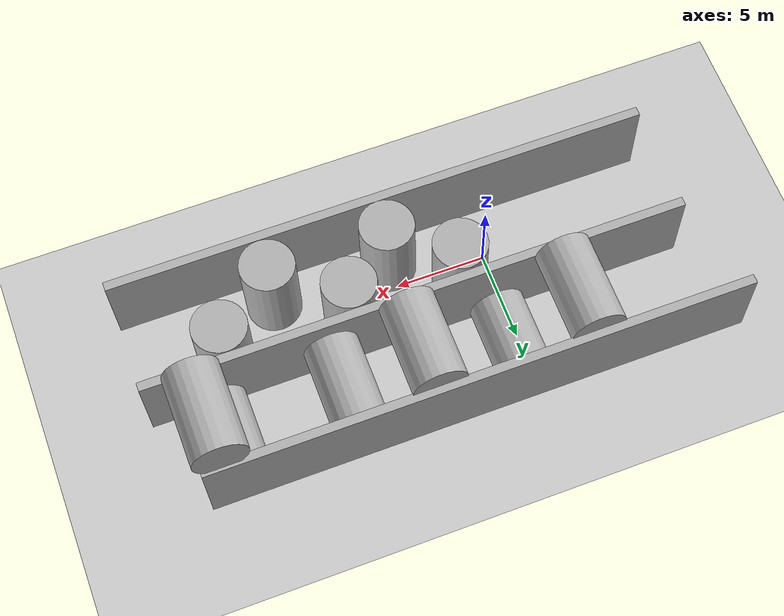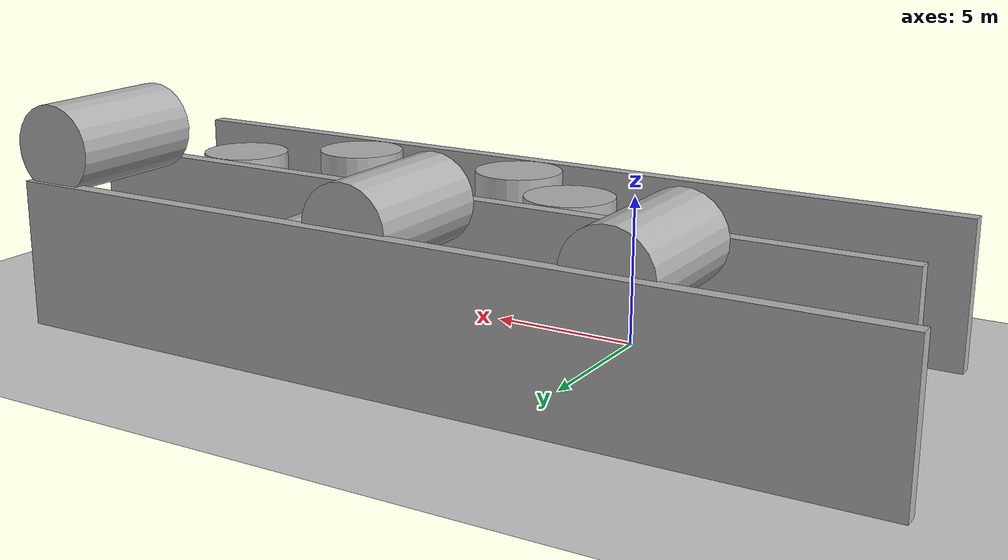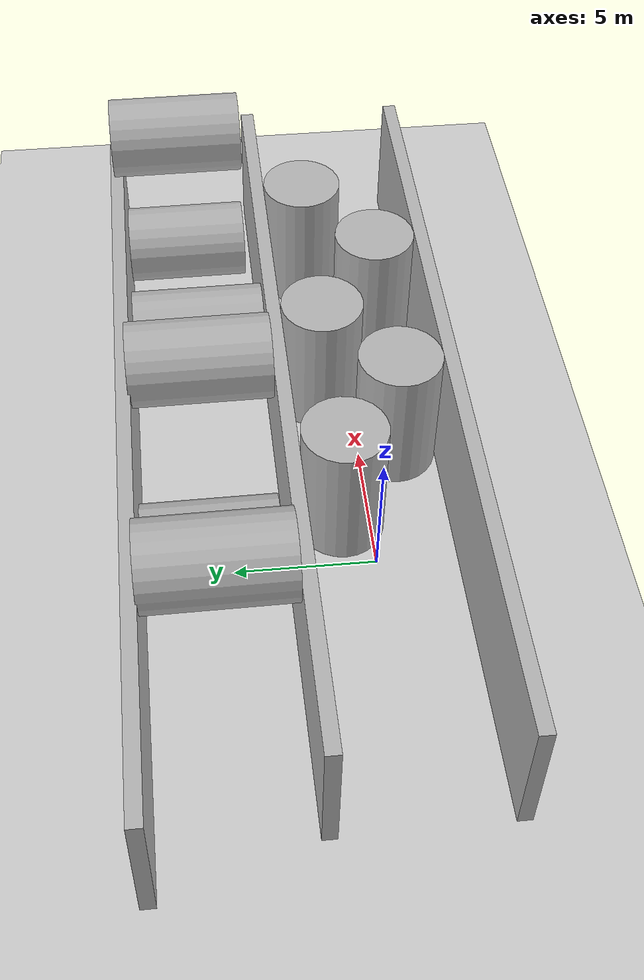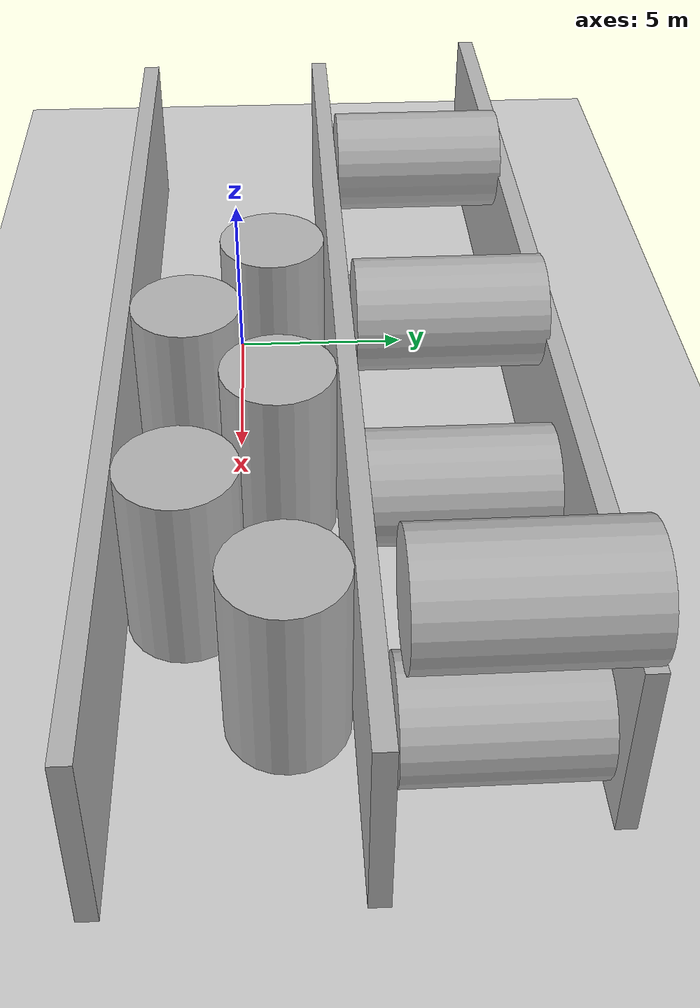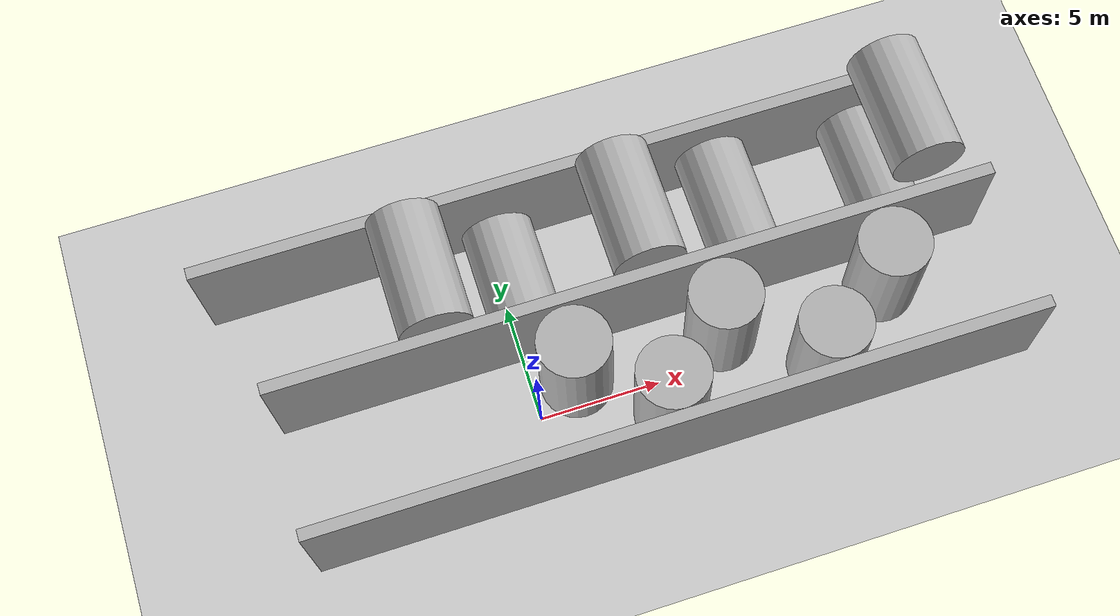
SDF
<sdf version='1.9'>
  <world name='demo'>
    <plugin name='ignition::gazebo::systems::Physics' filename='ignition-gazebo-physics-system'/>
    <plugin name='ignition::gazebo::systems::Sensors' filename='ignition-gazebo-sensors-system'>
      <render_engine>ogre2</render_engine>
    </plugin>
    <plugin name='ignition::gazebo::systems::SceneBroadcaster' filename='ignition-gazebo-scene-broadcaster-system'/>
    <plugin name='ignition::gazebo::systems::UserCommands' filename='ignition-gazebo-user-commands-system'/>
    <gravity>0 0 -9.8</gravity>
    <magnetic_field>6e-06 2.3e-05 -4.2e-05</magnetic_field>
    <atmosphere type='adiabatic'/>
    <physics type='ode'>
      <max_step_size>0.001</max_step_size>
      <real_time_factor>1</real_time_factor>
      <real_time_update_rate>1000</real_time_update_rate>
    </physics>
    <gui fullscreen='false'>
      <camera name='user_camera'>
        <track_visual>
          <name>crazyflie</name>
          <min_dist>0.02</min_dist>
          <max_dist>1</max_dist>
        </track_visual>
        <clip>
          <near>0.001</near>
          <far>1000</far>
        </clip>
      </camera>
    </gui>
    <scene>
      <ambient>0.4 0.4 0.4 1</ambient>
      <background>0.7 0.7 0.7 1</background>
      <shadows>true</shadows>
    </scene>
    <model name='ground_plane'>
      <static>true</static>
      <link name='link'>
        <collision name='collision'>
          <geometry>
            <plane>
              <normal>0 0 1</normal>
              <size>100 100</size>
            </plane>
          </geometry>
          <surface>
            <friction>
              <ode/>
            </friction>
            <bounce/>
            <contact/>
          </surface>
        </collision>
        <visual name='visual'>
          <geometry>
            <plane>
              <normal>0 0 1</normal>
              <size>100 100</size>
            </plane>
          </geometry>
          <material>
            <ambient>0.8 0.8 0.8 1</ambient>
            <diffuse>0.8 0.8 0.8 1</diffuse>
            <specular>0.8 0.8 0.8 1</specular>
          </material>
        </visual>
        <pose>0 0 0 0 -0 0</pose>
        <inertial>
          <pose>0 0 0 0 -0 0</pose>
          <mass>1</mass>
          <inertia>
            <ixx>1</ixx>
            <ixy>0</ixy>
            <ixz>0</ixz>
            <iyy>1</iyy>
            <iyz>0</iyz>
            <izz>1</izz>
          </inertia>
        </inertial>
        <enable_wind>false</enable_wind>
      </link>
      <pose>0 0 0 0 -0 0</pose>
      <self_collide>false</self_collide>
    </model>
    <model name='cylinder'>
      <pose>1.81527 1.03848 2.5 -0 0 0.000226</pose>
      <link name='cylinder_link'>
        <inertial>
          <inertia>
            <ixx>0.14580000000000001</ixx>
            <ixy>0</ixy>
            <ixz>0</ixz>
            <iyy>0.14580000000000001</iyy>
            <iyz>0</iyz>
            <izz>0.125</izz>
          </inertia>
          <mass>1</mass>
          <pose>0 0 0 0 -0 0</pose>
        </inertial>
        <collision name='cylinder_collision'>
          <geometry>
            <cylinder>
              <radius>1.5</radius>
              <length>5</length>
            </cylinder>
          </geometry>
          <surface>
            <friction>
              <ode/>
            </friction>
            <bounce/>
            <contact/>
          </surface>
        </collision>
        <visual name='cylinder_visual'>
          <geometry>
            <cylinder>
              <radius>1.5</radius>
              <length>5</length>
            </cylinder>
          </geometry>
          <material>
            <ambient>0.3 0.3 0.3 1</ambient>
            <diffuse>0.7 0.7 0.7 1</diffuse>
            <specular>1 1 1 1</specular>
          </material>
        </visual>
        <pose>0 0 0 0 -0 0</pose>
        <enable_wind>false</enable_wind>
      </link>
      <static>true</static>
      <self_collide>false</self_collide>
    </model>
    <model name='cylinder_0'>
      <pose>5.05656 -1.32108 2.5 0 0 2e-06</pose>
      <link name='cylinder_link'>
        <inertial>
          <inertia>
            <ixx>0.14580000000000001</ixx>
            <ixy>0</ixy>
            <ixz>0</ixz>
            <iyy>0.14580000000000001</iyy>
            <iyz>0</iyz>
            <izz>0.125</izz>
          </inertia>
          <mass>1</mass>
          <pose>0 0 0 0 -0 0</pose>
        </inertial>
        <collision name='cylinder_collision'>
          <geometry>
            <cylinder>
              <radius>1.5</radius>
              <length>5</length>
            </cylinder>
          </geometry>
          <surface>
            <friction>
              <ode/>
            </friction>
            <bounce/>
            <contact/>
          </surface>
        </collision>
        <visual name='cylinder_visual'>
          <geometry>
            <cylinder>
              <radius>1.5</radius>
              <length>5</length>
            </cylinder>
          </geometry>
          <material>
            <ambient>0.3 0.3 0.3 1</ambient>
            <diffuse>0.7 0.7 0.7 1</diffuse>
            <specular>1 1 1 1</specular>
          </material>
        </visual>
        <pose>0 0 0 0 -0 0</pose>
        <enable_wind>false</enable_wind>
      </link>
      <static>true</static>
      <self_collide>false</self_collide>
    </model>
    <model name='cylinder_1'>
      <pose>8.0159 1.10501 2.5 -0 -0 0.000515</pose>
      <link name='cylinder_link'>
        <inertial>
          <inertia>
            <ixx>0.14580000000000001</ixx>
            <ixy>0</ixy>
            <ixz>0</ixz>
            <iyy>0.14580000000000001</iyy>
            <iyz>0</iyz>
            <izz>0.125</izz>
          </inertia>
          <mass>1</mass>
          <pose>0 0 0 0 -0 0</pose>
        </inertial>
        <collision name='cylinder_collision'>
          <geometry>
            <cylinder>
              <radius>1.5</radius>
              <length>5</length>
            </cylinder>
          </geometry>
          <surface>
            <friction>
              <ode/>
            </friction>
            <bounce/>
            <contact/>
          </surface>
        </collision>
        <visual name='cylinder_visual'>
          <geometry>
            <cylinder>
              <radius>1.5</radius>
              <length>5</length>
            </cylinder>
          </geometry>
          <material>
            <ambient>0.3 0.3 0.3 1</ambient>
            <diffuse>0.7 0.7 0.7 1</diffuse>
            <specular>1 1 1 1</specular>
          </material>
        </visual>
        <pose>0 0 0 0 -0 0</pose>
        <enable_wind>false</enable_wind>
      </link>
      <static>true</static>
      <self_collide>false</self_collide>
    </model>
    <model name='cylinder_2'>
      <pose>11.6691 -1.31108 2.5 -0 -0 0</pose>
      <link name='cylinder_link'>
        <inertial>
          <inertia>
            <ixx>0.14580000000000001</ixx>
            <ixy>0</ixy>
            <ixz>0</ixz>
            <iyy>0.14580000000000001</iyy>
            <iyz>0</iyz>
            <izz>0.125</izz>
          </inertia>
          <mass>1</mass>
          <pose>0 0 0 0 -0 0</pose>
        </inertial>
        <collision name='cylinder_collision'>
          <geometry>
            <cylinder>
              <radius>1.5</radius>
              <length>5</length>
            </cylinder>
          </geometry>
          <surface>
            <friction>
              <ode/>
            </friction>
            <bounce/>
            <contact/>
          </surface>
        </collision>
        <visual name='cylinder_visual'>
          <geometry>
            <cylinder>
              <radius>1.5</radius>
              <length>5</length>
            </cylinder>
          </geometry>
          <material>
            <ambient>0.3 0.3 0.3 1</ambient>
            <diffuse>0.7 0.7 0.7 1</diffuse>
            <specular>1 1 1 1</specular>
          </material>
        </visual>
        <pose>0 0 0 0 -0 0</pose>
        <enable_wind>false</enable_wind>
      </link>
      <static>true</static>
      <self_collide>false</self_collide>
    </model>
    <model name='box'>
      <pose>4.89307 2.88151 2.5 0 -0 0.001471</pose>
      <link name='box_link'>
        <inertial>
          <inertia>
            <ixx>0.16666</ixx>
            <ixy>0</ixy>
            <ixz>0</ixz>
            <iyy>0.16666</iyy>
            <iyz>0</iyz>
            <izz>0.16666</izz>
          </inertia>
          <mass>1</mass>
          <pose>0 0 0 0 -0 0</pose>
        </inertial>
        <collision name='box_collision'>
          <geometry>
            <box>
              <size>30 0.5 5</size>
            </box>
          </geometry>
          <surface>
            <friction>
              <ode/>
            </friction>
            <bounce/>
            <contact/>
          </surface>
        </collision>
        <visual name='box_visual'>
          <geometry>
            <box>
              <size>30 0.5 5</size>
            </box>
          </geometry>
          <material>
            <ambient>0.3 0.3 0.3 1</ambient>
            <diffuse>0.7 0.7 0.7 1</diffuse>
            <specular>1 1 1 1</specular>
          </material>
        </visual>
        <pose>0 0 0 0 -0 0</pose>
        <enable_wind>false</enable_wind>
      </link>
      <static>true</static>
      <self_collide>false</self_collide>
    </model>
    <model name='box_0'>
      <pose>4.93074 -3.07107 2.5 0 -0 -5e-05</pose>
      <link name='box_link'>
        <inertial>
          <inertia>
            <ixx>0.16666</ixx>
            <ixy>0</ixy>
            <ixz>0</ixz>
            <iyy>0.16666</iyy>
            <iyz>0</iyz>
            <izz>0.16666</izz>
          </inertia>
          <mass>1</mass>
          <pose>0 0 0 0 -0 0</pose>
        </inertial>
        <collision name='box_collision'>
          <geometry>
            <box>
              <size>30 0.5 5</size>
            </box>
          </geometry>
          <surface>
            <friction>
              <ode/>
            </friction>
            <bounce/>
            <contact/>
          </surface>
        </collision>
        <visual name='box_visual'>
          <geometry>
            <box>
              <size>30 0.5 5</size>
            </box>
          </geometry>
          <material>
            <ambient>0.3 0.3 0.3 1</ambient>
            <diffuse>0.7 0.7 0.7 1</diffuse>
            <specular>1 1 1 1</specular>
          </material>
        </visual>
        <pose>0 0 0 0 -0 0</pose>
        <enable_wind>false</enable_wind>
      </link>
      <static>true</static>
      <self_collide>false</self_collide>
    </model>
    <model name='cylinder_2_1'>
      <pose>15.0474 1.12332 2.5 0 -0 0</pose>
      <link name='cylinder_link'>
        <inertial>
          <inertia>
            <ixx>0.14580000000000001</ixx>
            <ixy>0</ixy>
            <ixz>0</ixz>
            <iyy>0.14580000000000001</iyy>
            <iyz>0</iyz>
            <izz>0.125</izz>
          </inertia>
          <mass>1</mass>
          <pose>0 0 0 0 -0 0</pose>
        </inertial>
        <collision name='cylinder_collision'>
          <geometry>
            <cylinder>
              <radius>1.5</radius>
              <length>5</length>
            </cylinder>
          </geometry>
          <surface>
            <friction>
              <ode/>
            </friction>
            <bounce/>
            <contact/>
          </surface>
        </collision>
        <visual name='cylinder_visual'>
          <geometry>
            <cylinder>
              <radius>1.5</radius>
              <length>5</length>
            </cylinder>
          </geometry>
          <material>
            <ambient>0.3 0.3 0.3 1</ambient>
            <diffuse>0.7 0.7 0.7 1</diffuse>
            <specular>1 1 1 1</specular>
          </material>
        </visual>
        <pose>0 0 0 0 -0 0</pose>
        <enable_wind>false</enable_wind>
      </link>
      <static>true</static>
      <self_collide>false</self_collide>
    </model>
    <model name='cylinder_3'>
      <pose>-3.06416 5.63215 4.85426 -1.5708 -0.16836 0.005428</pose>
      <link name='cylinder_link'>
        <inertial>
          <inertia>
            <ixx>0.14580000000000001</ixx>
            <ixy>0</ixy>
            <ixz>0</ixz>
            <iyy>0.14580000000000001</iyy>
            <iyz>0</iyz>
            <izz>0.125</izz>
          </inertia>
          <mass>1</mass>
          <pose>0 0 0 0 -0 0</pose>
        </inertial>
        <collision name='cylinder_collision'>
          <geometry>
            <cylinder>
              <radius>1.5</radius>
              <length>5</length>
            </cylinder>
          </geometry>
          <surface>
            <friction>
              <ode/>
            </friction>
            <bounce/>
            <contact/>
          </surface>
        </collision>
        <visual name='cylinder_visual'>
          <geometry>
            <cylinder>
              <radius>1.5</radius>
              <length>5</length>
            </cylinder>
          </geometry>
          <material>
            <ambient>0.3 0.3 0.3 1</ambient>
            <diffuse>0.7 0.7 0.7 1</diffuse>
            <specular>1 1 1 1</specular>
          </material>
        </visual>
        <pose>0 0 0 0 -0 0</pose>
        <enable_wind>false</enable_wind>
      </link>
      <static>true</static>
      <self_collide>false</self_collide>
    </model>
    <model name='cylinder_3_1'>
      <pose>0.554416 5.82466 1.13643 -1.5708 -0.183744 0.005428</pose>
      <link name='cylinder_link'>
        <inertial>
          <inertia>
            <ixx>0.14580000000000001</ixx>
            <ixy>0</ixy>
            <ixz>0</ixz>
            <iyy>0.14580000000000001</iyy>
            <iyz>0</iyz>
            <izz>0.125</izz>
          </inertia>
          <mass>1</mass>
          <pose>0 0 0 0 -0 0</pose>
        </inertial>
        <collision name='cylinder_collision'>
          <geometry>
            <cylinder>
              <radius>1.5</radius>
              <length>5</length>
            </cylinder>
          </geometry>
          <surface>
            <friction>
              <ode/>
            </friction>
            <bounce/>
            <contact/>
          </surface>
        </collision>
        <visual name='cylinder_visual'>
          <geometry>
            <cylinder>
              <radius>1.5</radius>
              <length>5</length>
            </cylinder>
          </geometry>
          <material>
            <ambient>0.3 0.3 0.3 1</ambient>
            <diffuse>0.7 0.7 0.7 1</diffuse>
            <specular>1 1 1 1</specular>
          </material>
        </visual>
        <pose>0 0 0 0 -0 0</pose>
        <enable_wind>false</enable_wind>
      </link>
      <static>true</static>
      <self_collide>false</self_collide>
    </model>
    <model name='cylinder_3_2'>
      <pose>5.60313 5.67643 4.93201 -1.5708 0.032492 0.005428</pose>
      <link name='cylinder_link'>
        <inertial>
          <inertia>
            <ixx>0.14580000000000001</ixx>
            <ixy>0</ixy>
            <ixz>0</ixz>
            <iyy>0.14580000000000001</iyy>
            <iyz>0</iyz>
            <izz>0.125</izz>
          </inertia>
          <mass>1</mass>
          <pose>0 0 0 0 -0 0</pose>
        </inertial>
        <collision name='cylinder_collision'>
          <geometry>
            <cylinder>
              <radius>1.5</radius>
              <length>5</length>
            </cylinder>
          </geometry>
          <surface>
            <friction>
              <ode/>
            </friction>
            <bounce/>
            <contact/>
          </surface>
        </collision>
        <visual name='cylinder_visual'>
          <geometry>
            <cylinder>
              <radius>1.5</radius>
              <length>5</length>
            </cylinder>
          </geometry>
          <material>
            <ambient>0.3 0.3 0.3 1</ambient>
            <diffuse>0.7 0.7 0.7 1</diffuse>
            <specular>1 1 1 1</specular>
          </material>
        </visual>
        <pose>0 0 0 0 -0 0</pose>
        <enable_wind>false</enable_wind>
      </link>
      <static>true</static>
      <self_collide>false</self_collide>
    </model>
    <model name='cylinder_3_3'>
      <pose>9.82183 5.49195 2.54316 -1.5708 0.22648 0.005428</pose>
      <link name='cylinder_link'>
        <inertial>
          <inertia>
            <ixx>0.14580000000000001</ixx>
            <ixy>0</ixy>
            <ixz>0</ixz>
            <iyy>0.14580000000000001</iyy>
            <iyz>0</iyz>
            <izz>0.125</izz>
          </inertia>
          <mass>1</mass>
          <pose>0 0 0 0 -0 0</pose>
        </inertial>
        <collision name='cylinder_collision'>
          <geometry>
            <cylinder>
              <radius>1.5</radius>
              <length>5</length>
            </cylinder>
          </geometry>
          <surface>
            <friction>
              <ode/>
            </friction>
            <bounce/>
            <contact/>
          </surface>
        </collision>
        <visual name='cylinder_visual'>
          <geometry>
            <cylinder>
              <radius>1.5</radius>
              <length>5</length>
            </cylinder>
          </geometry>
          <material>
            <ambient>0.3 0.3 0.3 1</ambient>
            <diffuse>0.7 0.7 0.7 1</diffuse>
            <specular>1 1 1 1</specular>
          </material>
        </visual>
        <pose>0 0 0 0 -0 0</pose>
        <enable_wind>false</enable_wind>
      </link>
      <static>true</static>
      <self_collide>false</self_collide>
    </model>
    <model name='cylinder_3_2_1'>
      <pose>17.1355 5.94039 6.14679 -1.5708 0.032492 0.005428</pose>
      <link name='cylinder_link'>
        <inertial>
          <inertia>
            <ixx>0.14580000000000001</ixx>
            <ixy>0</ixy>
            <ixz>0</ixz>
            <iyy>0.14580000000000001</iyy>
            <iyz>0</iyz>
            <izz>0.125</izz>
          </inertia>
          <mass>1</mass>
          <pose>0 0 0 0 -0 0</pose>
        </inertial>
        <collision name='cylinder_collision'>
          <geometry>
            <cylinder>
              <radius>1.5</radius>
              <length>5</length>
            </cylinder>
          </geometry>
          <surface>
            <friction>
              <ode/>
            </friction>
            <bounce/>
            <contact/>
          </surface>
        </collision>
        <visual name='cylinder_visual'>
          <geometry>
            <cylinder>
              <radius>1.5</radius>
              <length>5</length>
            </cylinder>
          </geometry>
          <material>
            <ambient>0.3 0.3 0.3 1</ambient>
            <diffuse>0.7 0.7 0.7 1</diffuse>
            <specular>1 1 1 1</specular>
          </material>
        </visual>
        <pose>0 0 0 0 -0 0</pose>
        <enable_wind>false</enable_wind>
      </link>
      <static>true</static>
      <self_collide>false</self_collide>
    </model>
    <model name='box_1'>
      <pose>3.28638 8.33314 2.5 0 -0 0.001471</pose>
      <link name='box_link'>
        <inertial>
          <inertia>
            <ixx>0.16666</ixx>
            <ixy>0</ixy>
            <ixz>0</ixz>
            <iyy>0.16666</iyy>
            <iyz>0</iyz>
            <izz>0.16666</izz>
          </inertia>
          <mass>1</mass>
          <pose>0 0 0 0 -0 0</pose>
        </inertial>
        <collision name='box_collision'>
          <geometry>
            <box>
              <size>30 0.5 5</size>
            </box>
          </geometry>
          <surface>
            <friction>
              <ode/>
            </friction>
            <bounce/>
            <contact/>
          </surface>
        </collision>
        <visual name='box_visual'>
          <geometry>
            <box>
              <size>30 0.5 5</size>
            </box>
          </geometry>
          <material>
            <ambient>0.3 0.3 0.3 1</ambient>
            <diffuse>0.7 0.7 0.7 1</diffuse>
            <specular>1 1 1 1</specular>
          </material>
        </visual>
        <pose>0 0 0 0 -0 0</pose>
        <enable_wind>false</enable_wind>
      </link>
      <static>true</static>
      <self_collide>false</self_collide>
    </model>
    <model name='cylinder_3_2_1_1'>
      <pose>16.2404 5.95164 1.45095 -1.5708 0.032492 0.005428</pose>
      <link name='cylinder_link'>
        <inertial>
          <inertia>
            <ixx>0.14580000000000001</ixx>
            <ixy>0</ixy>
            <ixz>0</ixz>
            <iyy>0.14580000000000001</iyy>
            <iyz>0</iyz>
            <izz>0.125</izz>
          </inertia>
          <mass>1</mass>
          <pose>0 0 0 0 -0 0</pose>
        </inertial>
        <collision name='cylinder_collision'>
          <geometry>
            <cylinder>
              <radius>1.5</radius>
              <length>5</length>
            </cylinder>
          </geometry>
          <surface>
            <friction>
              <ode/>
            </friction>
            <bounce/>
            <contact/>
          </surface>
        </collision>
        <visual name='cylinder_visual'>
          <geometry>
            <cylinder>
              <radius>1.5</radius>
              <length>5</length>
            </cylinder>
          </geometry>
          <material>
            <ambient>0.3 0.3 0.3 1</ambient>
            <diffuse>0.7 0.7 0.7 1</diffuse>
            <specular>1 1 1 1</specular>
          </material>
        </visual>
        <pose>0 0 0 0 -0 0</pose>
        <enable_wind>false</enable_wind>
      </link>
      <static>true</static>
      <self_collide>false</self_collide>
    </model>
    <light name='sun' type='directional'>
      <pose>0 0 10 0 -0 0</pose>
      <cast_shadows>true</cast_shadows>
      <intensity>1</intensity>
      <direction>-0.5 0.1 -0.9</direction>
      <diffuse>1 1 1 1</diffuse>
      <specular>0.1 0.1 0.1 1</specular>
      <attenuation>
        <range>10</range>
        <linear>1</linear>
        <constant>1</constant>
        <quadratic>0</quadratic>
      </attenuation>
      <spot>
        <inner_angle>0</inner_angle>
        <outer_angle>0</outer_angle>
        <falloff>0</falloff>
      </spot>
    </light>
  </world>
</sdf>
